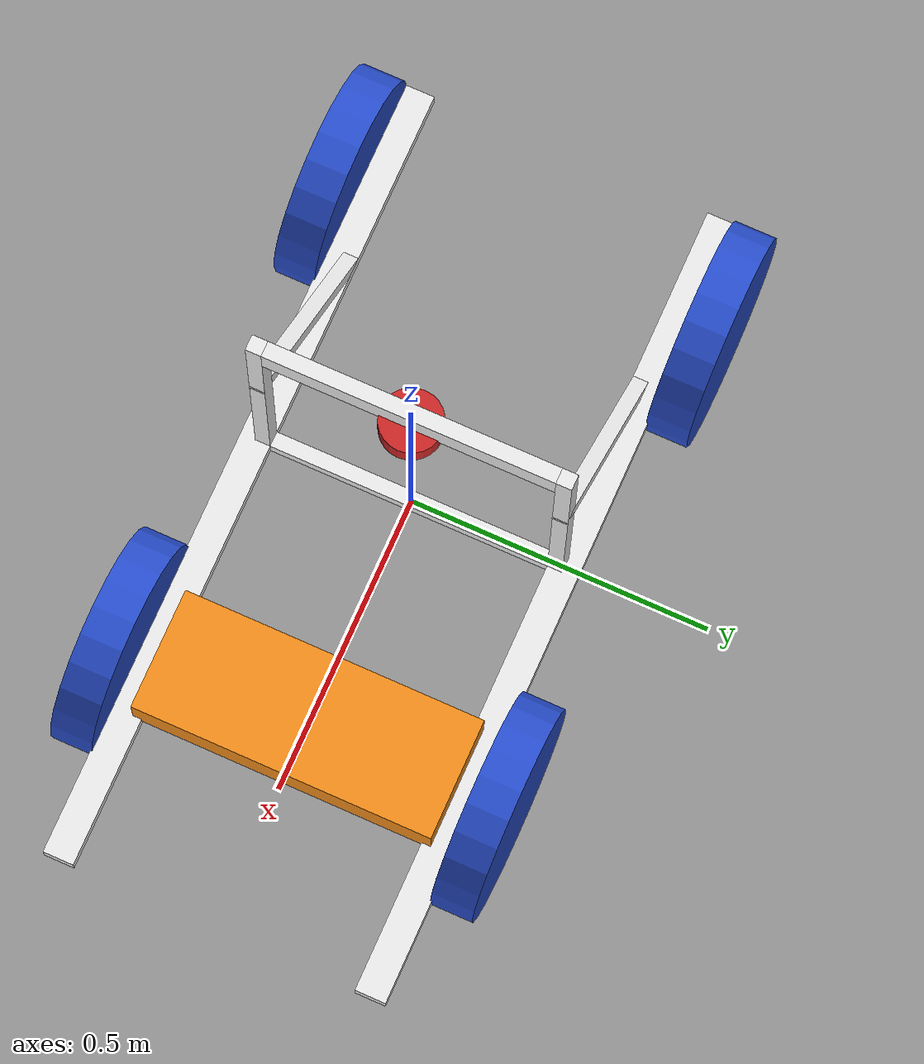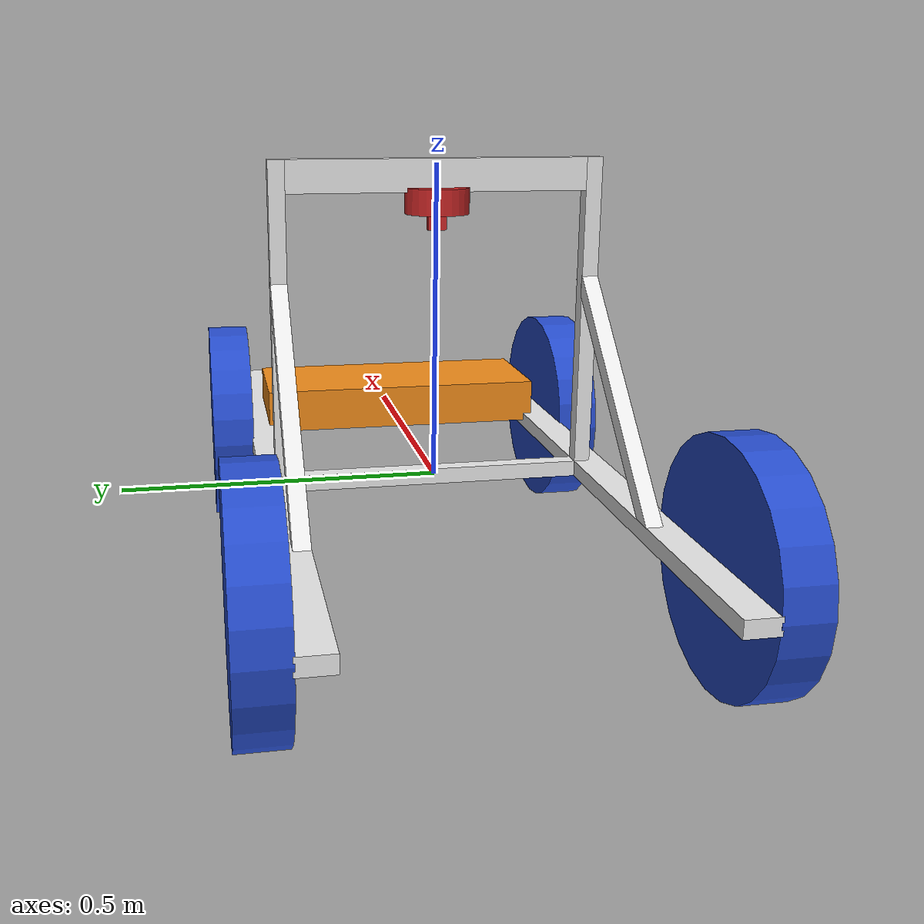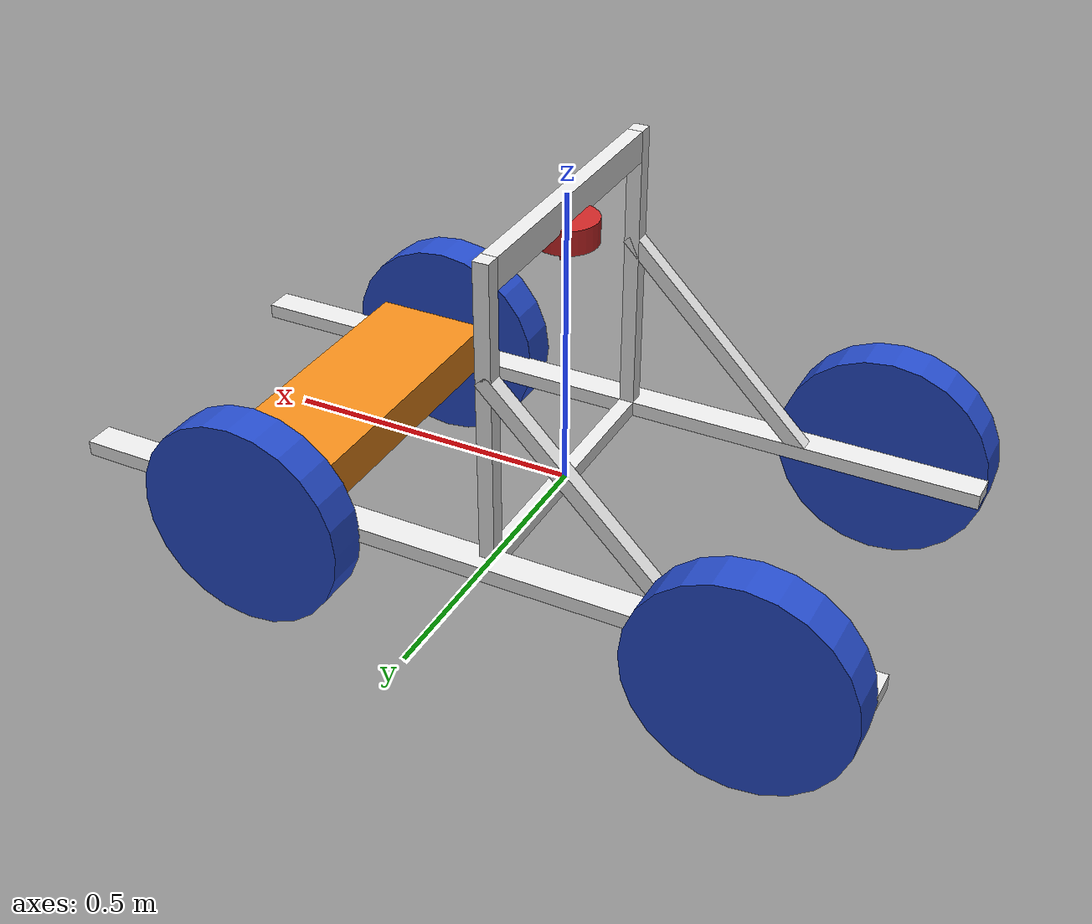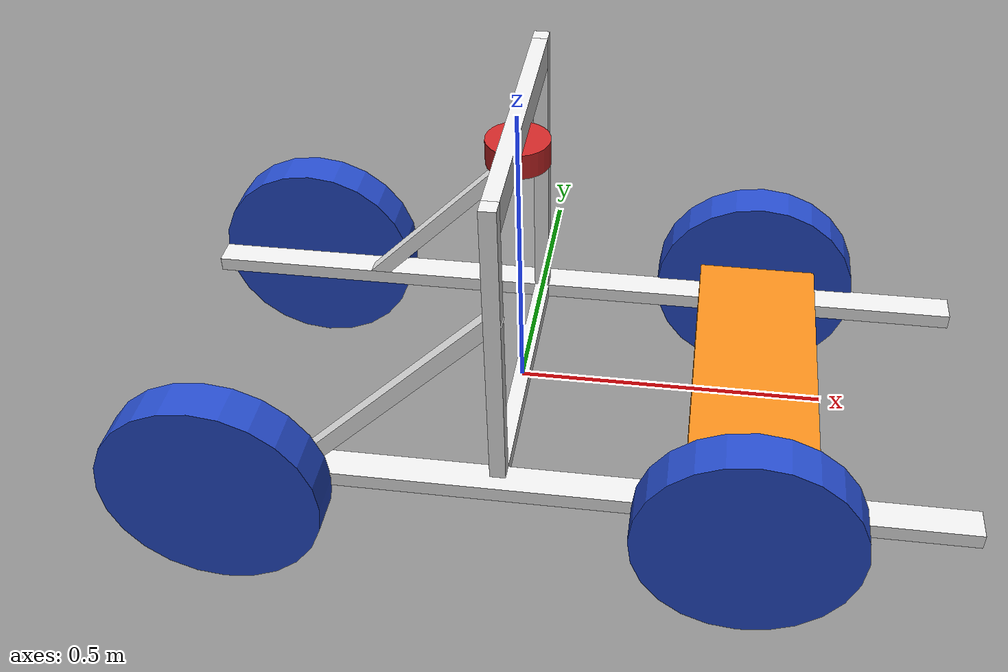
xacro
<?xml version="1.0"?>
<!-- Basic differential drive mobile base -->
<robot xmlns:xacro="http://www.ros.org/wiki/xacro" name="diffdrive_robot">
  <xacro:arg name="prefix" default="" />

  <xacro:include filename="$(find ros_phoenix)/urdf/diffbot_description.urdf.xacro" />

  <!-- Import Rviz colors -->
  <xacro:include filename="$(find ros_phoenix)/urdf/diffbot.materials.xacro" />

  <!-- Import diffbot ros2_control description -->
  <xacro:include filename="$(find ros_phoenix)/ros2_control/phoenix_bridge_example.ros2_control.xacro" />

  <xacro:diffbot prefix="$(arg prefix)" />

  <xacro:diffbot_ros2_control
    name="DiffBot" prefix="$(arg prefix)" />

</robot>

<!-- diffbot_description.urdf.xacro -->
<robot xmlns:xacro="http://www.ros.org/wiki/xacro" >
    <!-- the copy of robot_core_1 urdf -->
    <xacro:macro name="diffbot" params="prefix">
    <xacro:include filename="inertial_macros.xacro"/>
    <xacro:include filename="lidar.xacro" />
    <xacro:include filename="depth_camera.xacro"/>

    <xacro:property name="chassis_length" value="1.3501" />
    <xacro:property name="chassis_to_base_link" value="0.73595" />
    <xacro:property name="profile_height" value="0.0254" />
    <xacro:property name="profile_width" value="0.0254" />
    <xacro:property name="tower_height" value="0.508" />

    <xacro:property name="wheel_radius" value="0.1778" />
    <xacro:property name="wheel_thickness" value="0.07" />
    <xacro:property name="wheel_mass" value="0.05" />

    <xacro:property name="front_wheel_offset_x" value="0.3876" />
    <xacro:property name="back_wheel_offset_x" value="0.437" />

    <xacro:property name="wheel_offset_y" value="0.3182" />
    <xacro:property name="wheel_offset_z" value="0.1778" />
    <xacro:property name="caster_wheel_mass" value="0.01"/>

    <!-- BASE LINK -->

    <link name="base_link">

    </link>

    <!-- BASE_FOOTPRINT LINK -->

    <joint name="base_footprint_joint" type="fixed">
    	<parent link="base_link"/>
    	<child link="base_footprint"/>
    	<origin xyz="0 0 0" rpy="0 0 0"/>
    </joint>

    <link name="base_footprint">
    </link>

    <joint name="imu_joint" type="fixed">
        <parent link="base_link" />
        <child link="imu_link" />
        <origin xyz="0 0 0" rpy="0 0 0" />
    </joint>

    <link name="imu_link" />

    <!-- CHASSIS LONG BASE LEFT -->
    <!-- Needs to be 1.35m long, to the left by 0.2604m -->

    <joint name="chassis_base_left" type="fixed">
        <parent link="base_link"/>
        <child link="chassis_base_left"/>
        <origin xyz="${chassis_to_base_link} -0.2604 0"/>
    </joint>

    <link name="chassis_base_left">
        <visual>
            <origin xyz="${-chassis_length/2} 0 0"/>
            <geometry>
                <box size="${chassis_length} 0.0508 ${profile_height}"/>
            </geometry>
            <material name="white"/>
        </visual>
        <collision>
            <origin xyz="${-chassis_length/2} 0 0"/>
            <geometry>
                <box size="${chassis_length} 0.0508 ${profile_height}"/>
            </geometry>
        </collision>
        <xacro:inertial_box mass="0.5" x="${-chassis_length}" y="0.0508" z="${profile_height}">
            <origin xyz="${chassis_length/2} 0 0" rpy="0 0 0"/>
        </xacro:inertial_box>
    </link>

    <gazebo reference="chassis_base_left">
        <material>Gazebo/White</material>
    </gazebo>

    <!-- CHASSIS LONG BASE RIGHT -->
    <!-- Needs to be 1.35m long, to the left by  -->

    <joint name="chassis_base_right" type="fixed">
        <parent link="base_link"/>
        <child link="chassis_base_right"/>
        <origin xyz="${chassis_to_base_link} 0.2604 0"/>
    </joint>

    <link name="chassis_base_right">
        <visual>
            <origin xyz="${-chassis_length/2} 0 0"/>
            <geometry>
                <box size="${chassis_length} 0.0508 ${profile_height}"/>
            </geometry>
            <material name="white"/>
        </visual>
        <collision>
            <origin xyz="${-chassis_length/2} 0 0"/>
            <geometry>
                <box size="${chassis_length} 0.0508 ${profile_height}"/>
            </geometry>
        </collision>
        <xacro:inertial_box mass="0.5" x="${-chassis_length}" y="0.0508" z="${profile_height}">
            <origin xyz="${chassis_length/2} 0 0" rpy="0 0 0"/>
        </xacro:inertial_box>
    </link>

    <gazebo reference="chassis_base_right">
        <material>Gazebo/White</material>
    </gazebo>

    <!-- TOWER BASE -->

    <joint name="tower_base_" type="fixed">
        <parent link="base_link"/>
        <child link="tower_base"/>
        <origin xyz="0 0 0"/>
    </joint>

    <link name="tower_base">
        <visual>
            <origin xyz="0 0 0"/>
            <geometry>
                <box size="${profile_width} 0.4702 ${profile_height}"/>
            </geometry>
            <material name="white"/>
        </visual>
        <collision>
            <origin xyz="0 0 0"/>
            <geometry>
                <box size="${profile_width} 0.4702 ${profile_height}"/>
            </geometry>
        </collision>
        <xacro:inertial_box mass="0.5" x="${profile_width}" y="0.4702" z="${profile_height}">
            <origin xyz="0 0 0" rpy="0 0 0"/>
        </xacro:inertial_box>
    </link>

    <gazebo reference="tower_base">
        <material>Gazebo/White</material>
    </gazebo>

    <!-- TOWER HEIGHT LEFT -->
    <!-- Needs to be 0.510m tall -->

    <joint name="tower_up_left" type="fixed">
        <parent link="base_link"/>
        <child link="tower_up_left"/>
        <origin xyz="0 -0.2478 0"/>
    </joint>

    <link name="tower_up_left">
        <visual>
            <origin xyz="0 0 ${tower_height/2}"/>
            <geometry>
                <box size="${profile_width} ${profile_width} ${tower_height}"/>
            </geometry>
            <material name="white"/>
        </visual>
        <collision>
            <origin xyz="0 0 ${tower_height/2}"/>
            <geometry>
                <box size="${profile_width} ${profile_width} ${tower_height}"/>
            </geometry>
        </collision>
        <xacro:inertial_box mass="0.5" x="${profile_width}" y="${profile_width}" z="${tower_height}">
            <origin xyz="0 0 ${tower_height/2}" rpy="0 0 0"/>
        </xacro:inertial_box>
    </link>

    <gazebo reference="tower_up_left">
        <material>Gazebo/White</material>
    </gazebo>

    <!-- TOWER HEIGHT RIGHT-->
    <!-- Needs to be 0.510m tall -->

    <joint name="tower_up_right" type="fixed">
        <parent link="base_link"/>
        <child link="tower_up_right"/>
        <origin xyz="0 0.2478 0"/>
    </joint>

    <link name="tower_up_right">
        <visual>
            <origin xyz="0 0 ${tower_height/2}"/>
            <geometry>
                <box size="${profile_width} ${profile_width} ${tower_height}"/>
            </geometry>
            <material name="white"/>
        </visual>
        <collision>
            <origin xyz="0 0 ${tower_height/2}"/>
            <geometry>
                <box size="${profile_width} ${profile_width} ${tower_height}"/>
            </geometry>
        </collision>
        <xacro:inertial_box mass="0.5" x="${profile_width}" y="${profile_width}" z="${tower_height}">
            <origin xyz="0 0 ${tower_height/2}" rpy="0 0 0"/>
        </xacro:inertial_box>
    </link>

    <gazebo reference="tower_up_right">
        <material>Gazebo/White</material>
    </gazebo>

    <!-- TOWER TOP -->
    <!-- Needs to be 0.510m tall -->

    <joint name="tower_top" type="fixed">
        <parent link="base_link"/>
        <child link="tower_top"/>
        <origin xyz="0 0 ${tower_height-profile_width}"/>
    </joint>

    <link name="tower_top">
        <visual>
            <origin xyz="0 0 0"/>
            <geometry>
                <box size="${profile_width} 0.4702 ${profile_height*2}"/>
            </geometry>
            <material name="white"/>
        </visual>
        <collision>
            <origin xyz="0 0 0"/>
            <geometry>
                <box size="${profile_width} 0.4702 ${profile_height*2}"/>
            </geometry>
        </collision>
        <xacro:inertial_box mass="0.5" x="${profile_width}" y="0.4702" z="${profile_height*2}">
            <origin xyz="0 0 0" rpy="0 0 0"/>
        </xacro:inertial_box>
    </link>

    <!-- TOWER SUPPORT LEFT -->

    <joint name="tower_support_left" type="fixed">
        <parent link="base_link"/>
        <child link="tower_support_left"/>
        <origin xyz="-0.15635 -0.2478 0.160" rpy="0 ${-pi/4} 0"/>
        <axis xyz="1 0 0"/>
    </joint>

    <link name="tower_support_left">
        <visual>
            <origin xyz="0 0 0"/>
            <geometry>
                <box size="0.4572 ${profile_width} ${profile_height}"/>
            </geometry>
            <material name="white"/>
        </visual>
        <collision>
            <origin xyz="0 0 0"/>
            <geometry>
                <box size="0.4572 ${profile_width} ${profile_height}"/>
            </geometry>
        </collision>
        <xacro:inertial_box mass="0.5" x="0.4572" y="${profile_width}" z="${profile_height}">
            <origin xyz="0 0 0" rpy="0 0 0"/>
        </xacro:inertial_box>
    </link>

    <gazebo reference="tower_support_left">
        <material>Gazebo/White</material>
    </gazebo>

    <!-- TOWER SUPPORT RIGHT -->

    <joint name="tower_support_right" type="fixed">
        <parent link="base_link"/>
        <child link="tower_support_right"/>
        <origin xyz="-0.15635 0.2478 0.160" rpy="0 ${-pi/4} 0"/>
        <axis xyz="1 0 0"/>
    </joint>

    <link name="tower_support_right">
        <visual>
            <origin xyz="0 0 0"/>
            <geometry>
                <box size="0.4572 ${profile_width} ${profile_height}"/>
            </geometry>
            <material name="white"/>
        </visual>
        <collision>
            <origin xyz="0 0 0"/>
            <geometry>
                <box size="0.4572 ${profile_width} ${profile_height}"/>
            </geometry>
        </collision>
        <xacro:inertial_box mass="0.5" x="0.4572" y="${profile_width}" z="${profile_height}">
            <origin xyz="0 0 0" rpy="0 0 0"/>
        </xacro:inertial_box>
    </link>

    <gazebo reference="tower_support_right">
        <material>Gazebo/White</material>
    </gazebo>

    <!-- MOTOR BASE FRONT -->

    <joint name="motor_base_front" type="fixed">
        <parent link="base_link"/>
        <child link="motor_base_front"/>
        <origin xyz="0.426 0 0"/>
    </joint>

    <link name="motor_base_front">
        <visual>
            <origin xyz="0 0 0"/>
            <geometry>
                <box size="${profile_width} 0.4702 ${profile_height}"/>
            </geometry>
            <material name="white"/>
        </visual>
        <collision>
            <origin xyz="0 0 0"/>
            <geometry>
                <box size="${profile_width} 0.4702 ${profile_height}"/>
            </geometry>
        </collision>
        <xacro:inertial_box mass="0.1" x="${profile_width}" y="0.4702" z="${profile_height}">
            <origin xyz="0 0 0" rpy="0 0 0"/>
        </xacro:inertial_box>
    </link>

    <gazebo reference="motor_base_front">
        <material>Gazebo/White</material>
    </gazebo>

    <!-- MOTOR BASE BACK -->

    <joint name="motor_base_back" type="fixed">
        <parent link="base_link"/>
        <child link="motor_base_back"/>
        <origin xyz="0.35 0 0"/>
    </joint>

    <link name="motor_base_back">
        <visual>
            <origin xyz="0 0 0"/>
            <geometry>
                <box size="${profile_width} 0.4702 ${profile_height}"/>
            </geometry>
            <material name="white"/>
        </visual>
        <collision>
            <origin xyz="0 0 0"/>
            <geometry>
                <box size="${profile_width} 0.4702 ${profile_height}"/>
            </geometry>
        </collision>
        <xacro:inertial_box mass="0.1" x="${profile_width}" y="0.4702" z="${profile_height}">
            <origin xyz="0 0 0" rpy="0 0 0"/>
        </xacro:inertial_box>
    </link>

    <gazebo reference="motor_base_back">
        <material>Gazebo/White</material>
    </gazebo>

    <!-- MOTOR AND GEARBOX LINK -->

    <joint name="motor_joint" type="fixed">
        <parent link="base_link"/>
        <child link="motor"/>
        <origin xyz="0.3879 0 0"/>
    </joint>

    <link name="motor">
        <visual>
            <origin xyz="0 0 0.0375"/>
            <geometry>
                <box size="0.2 0.5 0.075"/>
            </geometry>
            <material name="orange"/>
        </visual>
        <collision>
            <origin xyz="0 0 0.0375"/>
            <geometry>
                <box size="0.2 0.5 0.075"/>
            </geometry>
        </collision>
        <xacro:inertial_box mass="0.01" x="0.2" y="0.5" z="0.075">
            <origin xyz="0 0 0.0375" rpy="0 0 0"/>
        </xacro:inertial_box>
    </link>

    <gazebo reference="motor">
        <material>Gazebo/Orange</material>
    </gazebo>

    <!-- FRONT LEFT WHEEL LINK -->

    <joint name="left_wheel_joint" type="continuous">
        <parent link="base_link"/>
        <child link="left_wheel"/>
        <origin xyz="${front_wheel_offset_x} ${wheel_offset_y} 0" rpy="-${pi/2} 0 0" />
        <axis xyz="0 0 1"/>
    </joint>

    <link name="left_wheel">
        <visual>
            <geometry>
                <cylinder radius="${wheel_radius}" length="${wheel_thickness}"/>
            </geometry>
            <material name="blue"/>
        </visual>
        <collision>
            <geometry>
                <sphere radius="${wheel_radius}"/>
            </geometry>
            <surface>
                <friction>
                    <torsional>
                        <coefficient>=0.5</coefficient>
                        <use_patch_radius>false</use_patch_radius>
                        <surface_radius>${wheel_radius}</surface_radius>
                    </torsional>
                </friction>
            </surface>
        </collision>
        <xacro:inertial_cylinder mass="${wheel_mass}" length="${wheel_thickness}" radius="${wheel_radius}">
            <origin xyz="0 0 0" rpy="0 0 0"/>
        </xacro:inertial_cylinder>
    </link>

    <gazebo reference="left_wheel">
        <material>Gazebo/Blue</material>
    </gazebo>

    <!-- FRONT RIGHT WHEEL LINK -->

    <joint name="right_wheel_joint" type="continuous">
        <parent link="base_link"/>
        <child link="right_wheel"/>
        <origin xyz="${front_wheel_offset_x} -${wheel_offset_y} 0" rpy="${pi/2} 0 0" />
        <axis xyz="0 0 -1"/>
    </joint>

    <link name="right_wheel">
        <visual>
            <geometry>
                <cylinder radius="${wheel_radius}" length="${wheel_thickness}"/>
            </geometry>
            <material name="blue"/>
        </visual>
        <collision>
            <geometry>
                <sphere radius="${wheel_radius}"/>
            </geometry>
            <surface>
                <friction>
                    <torsional>
                        <coefficient>0.5</coefficient>
                        <use_patch_radius>false</use_patch_radius>
                        <surface_radius>${wheel_radius}</surface_radius>
                    </torsional>
                </friction>
            </surface>
        </collision>
        <xacro:inertial_cylinder mass="${wheel_mass}" length="${wheel_thickness}" radius="${wheel_radius}">
            <origin xyz="0 0 0" rpy="0 0 0"/>
        </xacro:inertial_cylinder>
    </link>

    <gazebo reference="right_wheel">
        <material>Gazebo/Blue</material>
    </gazebo>

    <!-- BACK LEFT WHEEL LINK -->

    <joint name="back_left_wheel_joint" type="continuous">
        <parent link="base_link"/>
        <child link="back_left_wheel"/>
        <origin xyz="-${back_wheel_offset_x} -${wheel_offset_y} 0" rpy="-${pi/2} 0 0" />
        <axis xyz="0 0 1"/>
    </joint>

    <link name="back_left_wheel">
        <visual>
            <geometry>
                <cylinder radius="${wheel_radius}" length="${wheel_thickness}"/>
            </geometry>
            <material name="blue"/>
        </visual>
        <collision>
            <geometry>
                <sphere radius="${wheel_radius}"/>
            </geometry>
            <torsional>
                <coefficient>0.5</coefficient>
                <use_patch_radius>false</use_patch_radius>
                <surface_radius>${wheel_radius}</surface_radius>
            </torsional>
        </collision>
        <xacro:inertial_cylinder mass="${caster_wheel_mass}" length="${wheel_thickness}" radius="${wheel_radius}">
            <origin xyz="0 0 0" rpy="0 0 0"/>
        </xacro:inertial_cylinder>
    </link>

    <gazebo reference="back_left_wheel">
        <material>Gazebo/Blue</material>
        <mu1 value="0.001"/>
        <mu2 value="0.001"/>
    </gazebo>

    <!-- BACK RIGHT WHEEL LINK -->

    <joint name="back_right_wheel_joint" type="continuous">
        <parent link="base_link"/>
        <child link="back_right_wheel"/>
        <origin xyz="-${back_wheel_offset_x} ${wheel_offset_y} 0" rpy="${pi/2} 0 0" />
        <axis xyz="0 0 -1"/>
    </joint>

    <link name="back_right_wheel">
        <visual>
            <geometry>
                <cylinder radius="${wheel_radius}" length="${wheel_thickness}"/>
            </geometry>
            <material name="blue"/>
        </visual>
        <collision>
            <geometry>
                <sphere radius="${wheel_radius}"/>
            </geometry>
            <torsional>
                <coefficient>0.5</coefficient>
                <use_patch_radius>false</use_patch_radius>
                <surface_radius>${wheel_radius}</surface_radius>
            </torsional>
        </collision>
        <xacro:inertial_cylinder mass="${caster_wheel_mass}" length="${wheel_thickness}" radius="${wheel_radius}">
            <origin xyz="0 0 0" rpy="0 0 0"/>
        </xacro:inertial_cylinder>
    </link>

    <gazebo reference="back_right_wheel">
        <material>Gazebo/Blue</material>
        <mu1 value="0.001"/>
        <mu2 value="0.001"/>
    </gazebo>

    </xacro:macro>

</robot>

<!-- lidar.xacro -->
<robot xmlns:xacro="http://www.ros.org/wiki/xacro" >

    <xacro:property name="chassis_length" value="1.3501" />
    <xacro:property name="chassis_to_base_link" value="0.4954" />
    <xacro:property name="profile_height" value="0.0254" />
    <xacro:property name="profile_width" value="0.0254" />
    <xacro:property name="tower_height" value="0.388" />

    <xacro:property name="wheel_radius" value="0.1778" />
    <xacro:property name="wheel_thickness" value="0.07" />
    <xacro:property name="wheel_mass" value="56" />

    <xacro:property name="front_wheel_offset_x" value="0.14" />
    <xacro:property name="back_wheel_offset_x" value="0.49" />

    <xacro:property name="wheel_offset_y" value="0.3182" />
    <xacro:property name="wheel_offset_z" value="0.1778" />
    <xacro:property name="caster_wheel_mass" value="56"/>

    <xacro:property name="double_prof_mass" value="0.235398773"/>
    <xacro:property name="single_prof_mass" value="0.147601476"/>
    <xacro:property name="spoke_mass" value="1.6"/>
    <xacro:property name="motorgearbox_mass" value="136"/>
    <xacro:property name="scoop_mass" value="196"/>
    <xacro:property name="tiltingact_mass" value="38"/>
    <xacro:property name="liftingact_mass" value="44"/>

    <joint name="laser_joint" type="fixed">
        <parent link="base_link"/>
        <child link="laser_frame"/>
        <origin xyz="0 0 ${tower_height-profile_width +profile_height*2 +0.03 }" rpy="0 0 0"/>
    </joint>

    <link name="laser_frame">
        <visual>
            <geometry>
                <cylinder radius="0.05" length="0.04"/>
            </geometry>
            <material name="red"/>
        </visual>
        <collision>
            <geometry>
                <cylinder radius="0.05" length="0.04"/>
            </geometry>
        </collision>
        <xacro:inertial_cylinder mass="0.1" length="0.04" radius="0.05">
            <origin xyz="0 0 0" rpy="0 0 0"/>
        </xacro:inertial_cylinder>1
    </link>

    <gazebo reference="laser_frame">
        <material>Gazebo/Red</material>

        <sensor name="laser" type="ray">
            <pose> 0 0 0 0 0 0 </pose>
            <visualize>true</visualize>
            <update_rate>10</update_rate>
            <ray>
                <scan>
                    <horizontal>
                        <samples>360</samples>
                        <min_angle>-3.14</min_angle>
                        <max_angle>3.14</max_angle>
                    </horizontal>
                </scan>
                <range>
                    <min>0.3</min>
                    <max>12</max>
                </range>
            </ray>
            <plugin name="laser_controller" filename="libgazebo_ros_ray_sensor.so">
                <ros>
                    <argument>~/out:=scan</argument>
                </ros>
                <output_type>sensor_msgs/LaserScan</output_type>
                <frame_name>laser_frame</frame_name>
            </plugin>
        </sensor>
    </gazebo>

</robot>

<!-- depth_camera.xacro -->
<robot xmlns:xacro="http://www.ros.org/wiki/xacro" >
    <xacro:property name="chassis_length" value="1.3501" />
    <xacro:property name="chassis_to_base_link" value="0.4954" />
    <xacro:property name="profile_height" value="0.0254" />
    <xacro:property name="profile_width" value="0.0254" />
    <xacro:property name="tower_height" value="0.388" />

    <xacro:property name="wheel_radius" value="0.1778" />
    <xacro:property name="wheel_thickness" value="0.07" />
    <xacro:property name="wheel_mass" value="56" />

    <xacro:property name="front_wheel_offset_x" value="0.14" />
    <xacro:property name="back_wheel_offset_x" value="0.49" />

    <xacro:property name="wheel_offset_y" value="0.3182" />
    <xacro:property name="wheel_offset_z" value="0.1778" />
    <xacro:property name="caster_wheel_mass" value="56"/>

    <xacro:property name="double_prof_mass" value="0.235398773"/>
    <xacro:property name="single_prof_mass" value="0.147601476"/>
    <xacro:property name="spoke_mass" value="1.6"/>
    <xacro:property name="motorgearbox_mass" value="136"/>
    <xacro:property name="scoop_mass" value="196"/>
    <xacro:property name="tiltingact_mass" value="38"/>
    <xacro:property name="liftingact_mass" value="44"/>

    <joint name="camera_joint" type="fixed">
        <parent link="base_link"/>
        <child link="camera_link"/>
        <origin xyz="0 0 ${tower_height-profile_width +profile_height*2}" rpy="0 0 0"/>
    </joint>

    <link name="camera_link">
        <visual>
            <geometry>
                <box size="0.010 0.03 0.03"/>
            </geometry>
            <material name="red"/>
        </visual>
    </link>

    <joint name="camera_optical_joint" type="fixed">
        <parent link="camera_link"/>
        <child link="camera_link_optical"/>
        <origin xyz="0 0 0" rpy="${-pi/2} 0 ${-pi/2}"/>
    </joint>

    <link name="camera_link_optical"></link>

    <gazebo reference="camera_link">
        <material>Gazebo/Red</material>

        <sensor name="camera" type="depth">
            <pose> 0 0 0 0 0 0 </pose>
            <visualize>true</visualize>
            <update_rate>10</update_rate>
            <camera>
                <horizontal_fov>1.089</horizontal_fov>
                <image>
                    <format>B8G8R8</format>
                    <width>640</width>
                    <height>480</height>
                </image>
                <clip>
                    <near>0.05</near>
                    <far>8.0</far>
                </clip>
            </camera>
            <plugin name="camera_controller" filename="libgazebo_ros_camera.so">
                <frame_name>camera_link_optical</frame_name>
                <min_depth>0.1</min_depth>
                <max_depth>100</max_depth>
            </plugin>
        </sensor>
    </gazebo>

</robot>
